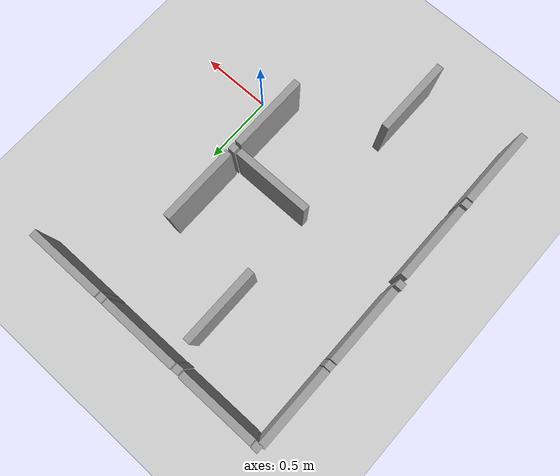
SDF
<sdf version="1.6">
 <world name="default">
  <model name="ground_plane">
   <static>1</static>
   <link name="link">
    <collision name="collision">
     <geometry><plane><normal>0 0 1</normal><size>100 100</size></plane></geometry>
     <surface>
      <contact><collide_bitmask>65535</collide_bitmask></contact>
      <friction><ode><mu>100</mu><mu2>50</mu2></ode></friction>
     </surface>
    </collision>
    <visual name="visual">
     <cast_shadows>0</cast_shadows>
     <geometry><plane><normal>0 0 1</normal><size>100 100</size></plane></geometry>
     <material>
      <script><uri>file://media/materials/scripts/gazebo.material</uri><name>Gazebo/Grey</name></script>
     </material>
    </visual>
   </link>
  </model>
  <model name="white_maze">
   <link name="link_0_clone_1_clone_2">
    <inertial>
     <mass>1</mass>
     <inertia>
      <ixx>0.166667</ixx>
      <ixy>0</ixy>
      <ixz>0</ixz>
      <iyy>0.166667</iyy>
      <iyz>0</iyz>
      <izz>0.166667</izz>
     </inertia>
    </inertial>
    <pose>-0.019419 1.51088 0 0 -0 0</pose>
    <visual name="visual">
     <geometry><box><size>0.55 0.05 0.4</size></box></geometry>
     <material>
      <lighting>1</lighting>
      <script><uri>file://media/materials/scripts/gazebo.material</uri><name>Gazebo/Grey</name></script>
      <shader type="vertex"><normal_map>__default__</normal_map></shader>
      <ambient>1 1 1 1</ambient>
      <diffuse>0.7 0.7 0.7 1</diffuse>
      <specular>0.01 0.01 0.01 1</specular>
      <emissive>0 0 0 1</emissive>
     </material>
    </visual>
    <collision name="collision">
     <geometry><box><size>0.55 0.05 0.4</size></box></geometry>
     <surface>
      <friction>
       <ode><mu>1</mu><mu2>1</mu2><fdir1>0 0 0</fdir1><slip1>0</slip1><slip2>0</slip2></ode>
       <torsional>
        <coefficient>1</coefficient>
        <patch_radius>0</patch_radius>
        <surface_radius>0</surface_radius>
        <use_patch_radius>1</use_patch_radius>
        <ode><slip>0</slip></ode>
       </torsional>
      </friction>
      <bounce><restitution_coefficient>0</restitution_coefficient><threshold>1e+06</threshold></bounce>
      <contact>
       <collide_without_contact>0</collide_without_contact>
       <collide_without_contact_bitmask>1</collide_without_contact_bitmask>
       <collide_bitmask>1</collide_bitmask>
       <ode>
        <soft_cfm>0</soft_cfm>
        <soft_erp>0.2</soft_erp>
        <kp>1e+13</kp>
        <kd>1</kd>
        <max_vel>0.01</max_vel>
        <min_depth>0</min_depth>
       </ode>
       <bullet>
        <split_impulse>1</split_impulse>
        <split_impulse_penetration_threshold>-0.01</split_impulse_penetration_threshold>
        <soft_cfm>0</soft_cfm>
        <soft_erp>0.2</soft_erp>
        <kp>1e+13</kp>
        <kd>1</kd>
       </bullet>
      </contact>
     </surface>
    </collision>
   </link>
   <link name="link_0_clone_1_clone_3">
    <inertial>
     <mass>1</mass>
     <inertia>
      <ixx>0.166667</ixx>
      <ixy>0</ixy>
      <ixz>0</ixz>
      <iyy>0.166667</iyy>
      <iyz>0</iyz>
      <izz>0.166667</izz>
     </inertia>
    </inertial>
    <pose>-0.630178 1.51122 0 0 -0 0</pose>
    <visual name="visual">
     <geometry><box><size>0.55 0.05 0.4</size></box></geometry>
     <material>
      <lighting>1</lighting>
      <script><uri>file://media/materials/scripts/gazebo.material</uri><name>Gazebo/Grey</name></script>
      <shader type="vertex"><normal_map>__default__</normal_map></shader>
      <ambient>1 1 1 1</ambient>
      <diffuse>0.7 0.7 0.7 1</diffuse>
      <specular>0.01 0.01 0.01 1</specular>
      <emissive>0 0 0 1</emissive>
     </material>
    </visual>
    <collision name="collision">
     <geometry><box><size>0.55 0.05 0.4</size></box></geometry>
     <surface>
      <friction>
       <ode><mu>1</mu><mu2>1</mu2><fdir1>0 0 0</fdir1><slip1>0</slip1><slip2>0</slip2></ode>
       <torsional>
        <coefficient>1</coefficient>
        <patch_radius>0</patch_radius>
        <surface_radius>0</surface_radius>
        <use_patch_radius>1</use_patch_radius>
        <ode><slip>0</slip></ode>
       </torsional>
      </friction>
      <bounce><restitution_coefficient>0</restitution_coefficient><threshold>1e+06</threshold></bounce>
      <contact>
       <collide_without_contact>0</collide_without_contact>
       <collide_without_contact_bitmask>1</collide_without_contact_bitmask>
       <collide_bitmask>1</collide_bitmask>
       <ode>
        <soft_cfm>0</soft_cfm>
        <soft_erp>0.2</soft_erp>
        <kp>1e+13</kp>
        <kd>1</kd>
        <max_vel>0.01</max_vel>
        <min_depth>0</min_depth>
       </ode>
       <bullet>
        <split_impulse>1</split_impulse>
        <split_impulse_penetration_threshold>-0.01</split_impulse_penetration_threshold>
        <soft_cfm>0</soft_cfm>
        <soft_erp>0.2</soft_erp>
        <kp>1e+13</kp>
        <kd>1</kd>
       </bullet>
      </contact>
     </surface>
    </collision>
   </link>
   <link name="link_0_clone_1_clone_4">
    <inertial>
     <mass>1</mass>
     <inertia>
      <ixx>0.166667</ixx>
      <ixy>0</ixy>
      <ixz>0</ixz>
      <iyy>0.166667</iyy>
      <iyz>0</iyz>
      <izz>0.166667</izz>
     </inertia>
    </inertial>
    <pose>-1.24431 1.51418 0 0 -0 0</pose>
    <visual name="visual">
     <geometry><box><size>0.55 0.05 0.4</size></box></geometry>
     <material>
      <lighting>1</lighting>
      <script><uri>file://media/materials/scripts/gazebo.material</uri><name>Gazebo/Grey</name></script>
      <shader type="vertex"><normal_map>__default__</normal_map></shader>
      <ambient>1 1 1 1</ambient>
      <diffuse>0.7 0.7 0.7 1</diffuse>
      <specular>0.01 0.01 0.01 1</specular>
      <emissive>0 0 0 1</emissive>
     </material>
    </visual>
    <collision name="collision">
     <geometry><box><size>0.55 0.05 0.4</size></box></geometry>
     <surface>
      <friction>
       <ode><mu>1</mu><mu2>1</mu2><fdir1>0 0 0</fdir1><slip1>0</slip1><slip2>0</slip2></ode>
       <torsional>
        <coefficient>1</coefficient>
        <patch_radius>0</patch_radius>
        <surface_radius>0</surface_radius>
        <use_patch_radius>1</use_patch_radius>
        <ode><slip>0</slip></ode>
       </torsional>
      </friction>
      <bounce><restitution_coefficient>0</restitution_coefficient><threshold>1e+06</threshold></bounce>
      <contact>
       <collide_without_contact>0</collide_without_contact>
       <collide_without_contact_bitmask>1</collide_without_contact_bitmask>
       <collide_bitmask>1</collide_bitmask>
       <ode>
        <soft_cfm>0</soft_cfm>
        <soft_erp>0.2</soft_erp>
        <kp>1e+13</kp>
        <kd>1</kd>
        <max_vel>0.01</max_vel>
        <min_depth>0</min_depth>
       </ode>
       <bullet>
        <split_impulse>1</split_impulse>
        <split_impulse_penetration_threshold>-0.01</split_impulse_penetration_threshold>
        <soft_cfm>0</soft_cfm>
        <soft_erp>0.2</soft_erp>
        <kp>1e+13</kp>
        <kd>1</kd>
       </bullet>
      </contact>
     </surface>
    </collision>
   </link>
   <link name="link_0_clone_1_clone_clone_1_clone_0">
    <inertial>
     <mass>1</mass>
     <inertia>
      <ixx>0.166667</ixx>
      <ixy>0</ixy>
      <ixz>0</ixz>
      <iyy>0.166667</iyy>
      <iyz>0</iyz>
      <izz>0.166667</izz>
     </inertia>
    </inertial>
    <pose>-1.55915 -0.649577 0 0 0 -1.57264</pose>
    <visual name="visual">
     <geometry><box><size>0.55 0.05 0.4</size></box></geometry>
     <material>
      <lighting>1</lighting>
      <script><uri>file://media/materials/scripts/gazebo.material</uri><name>Gazebo/Grey</name></script>
      <shader type="vertex"><normal_map>__default__</normal_map></shader>
      <ambient>1 1 1 1</ambient>
      <diffuse>0.7 0.7 0.7 1</diffuse>
      <specular>0.01 0.01 0.01 1</specular>
      <emissive>0 0 0 1</emissive>
     </material>
    </visual>
    <collision name="collision">
     <geometry><box><size>0.55 0.05 0.4</size></box></geometry>
     <surface>
      <friction>
       <ode><mu>1</mu><mu2>1</mu2><fdir1>0 0 0</fdir1><slip1>0</slip1><slip2>0</slip2></ode>
       <torsional>
        <coefficient>1</coefficient>
        <patch_radius>0</patch_radius>
        <surface_radius>0</surface_radius>
        <use_patch_radius>1</use_patch_radius>
        <ode><slip>0</slip></ode>
       </torsional>
      </friction>
      <bounce><restitution_coefficient>0</restitution_coefficient><threshold>1e+06</threshold></bounce>
      <contact>
       <collide_without_contact>0</collide_without_contact>
       <collide_without_contact_bitmask>1</collide_without_contact_bitmask>
       <collide_bitmask>1</collide_bitmask>
       <ode>
        <soft_cfm>0</soft_cfm>
        <soft_erp>0.2</soft_erp>
        <kp>1e+13</kp>
        <kd>1</kd>
        <max_vel>0.01</max_vel>
        <min_depth>0</min_depth>
       </ode>
       <bullet>
        <split_impulse>1</split_impulse>
        <split_impulse_penetration_threshold>-0.01</split_impulse_penetration_threshold>
        <soft_cfm>0</soft_cfm>
        <soft_erp>0.2</soft_erp>
        <kp>1e+13</kp>
        <kd>1</kd>
       </bullet>
      </contact>
     </surface>
    </collision>
   </link>
   <link name="link_0_clone_1_clone_clone_1_clone_0_clone">
    <inertial>
     <mass>1</mass>
     <inertia>
      <ixx>0.166667</ixx>
      <ixy>0</ixy>
      <ixz>0</ixz>
      <iyy>0.166667</iyy>
      <iyz>0</iyz>
      <izz>0.166667</izz>
     </inertia>
    </inertial>
    <pose>-0.883039 -0.671172 0 0 0 -1.57264</pose>
    <visual name="visual">
     <geometry><box><size>0.55 0.05 0.4</size></box></geometry>
     <material>
      <lighting>1</lighting>
      <script><uri>file://media/materials/scripts/gazebo.material</uri><name>Gazebo/Grey</name></script>
      <shader type="vertex"><normal_map>__default__</normal_map></shader>
      <ambient>1 1 1 1</ambient>
      <diffuse>0.7 0.7 0.7 1</diffuse>
      <specular>0.01 0.01 0.01 1</specular>
      <emissive>0 0 0 1</emissive>
     </material>
    </visual>
    <collision name="collision">
     <geometry><box><size>0.55 0.05 0.4</size></box></geometry>
     <surface>
      <friction>
       <ode><mu>1</mu><mu2>1</mu2><fdir1>0 0 0</fdir1><slip1>0</slip1><slip2>0</slip2></ode>
       <torsional>
        <coefficient>1</coefficient>
        <patch_radius>0</patch_radius>
        <surface_radius>0</surface_radius>
        <use_patch_radius>1</use_patch_radius>
        <ode><slip>0</slip></ode>
       </torsional>
      </friction>
      <bounce><restitution_coefficient>0</restitution_coefficient><threshold>1e+06</threshold></bounce>
      <contact>
       <collide_without_contact>0</collide_without_contact>
       <collide_without_contact_bitmask>1</collide_without_contact_bitmask>
       <collide_bitmask>1</collide_bitmask>
       <ode>
        <soft_cfm>0</soft_cfm>
        <soft_erp>0.2</soft_erp>
        <kp>1e+13</kp>
        <kd>1</kd>
        <max_vel>0.01</max_vel>
        <min_depth>0</min_depth>
       </ode>
       <bullet>
        <split_impulse>1</split_impulse>
        <split_impulse_penetration_threshold>-0.01</split_impulse_penetration_threshold>
        <soft_cfm>0</soft_cfm>
        <soft_erp>0.2</soft_erp>
        <kp>1e+13</kp>
        <kd>1</kd>
       </bullet>
      </contact>
     </surface>
    </collision>
   </link>
   <link name="link_0_clone_1_clone_clone_1_clone_0_clone_clone">
    <inertial>
     <mass>1</mass>
     <inertia>
      <ixx>0.166667</ixx>
      <ixy>0</ixy>
      <ixz>0</ixz>
      <iyy>0.166667</iyy>
      <iyz>0</iyz>
      <izz>0.166667</izz>
     </inertia>
    </inertial>
    <pose>-0.276196 0.011056 0 0 0 -1.57264</pose>
    <visual name="visual">
     <geometry><box><size>0.55 0.05 0.4</size></box></geometry>
     <material>
      <lighting>1</lighting>
      <script><uri>file://media/materials/scripts/gazebo.material</uri><name>Gazebo/Grey</name></script>
      <shader type="vertex"><normal_map>__default__</normal_map></shader>
      <ambient>1 1 1 1</ambient>
      <diffuse>0.7 0.7 0.7 1</diffuse>
      <specular>0.01 0.01 0.01 1</specular>
      <emissive>0 0 0 1</emissive>
     </material>
    </visual>
    <collision name="collision">
     <geometry><box><size>0.55 0.05 0.4</size></box></geometry>
     <surface>
      <friction>
       <ode><mu>1</mu><mu2>1</mu2><fdir1>0 0 0</fdir1><slip1>0</slip1><slip2>0</slip2></ode>
       <torsional>
        <coefficient>1</coefficient>
        <patch_radius>0</patch_radius>
        <surface_radius>0</surface_radius>
        <use_patch_radius>1</use_patch_radius>
        <ode><slip>0</slip></ode>
       </torsional>
      </friction>
      <bounce><restitution_coefficient>0</restitution_coefficient><threshold>1e+06</threshold></bounce>
      <contact>
       <collide_without_contact>0</collide_without_contact>
       <collide_without_contact_bitmask>1</collide_without_contact_bitmask>
       <collide_bitmask>1</collide_bitmask>
       <ode>
        <soft_cfm>0</soft_cfm>
        <soft_erp>0.2</soft_erp>
        <kp>1e+13</kp>
        <kd>1</kd>
        <max_vel>0.01</max_vel>
        <min_depth>0</min_depth>
       </ode>
       <bullet>
        <split_impulse>1</split_impulse>
        <split_impulse_penetration_threshold>-0.01</split_impulse_penetration_threshold>
        <soft_cfm>0</soft_cfm>
        <soft_erp>0.2</soft_erp>
        <kp>1e+13</kp>
        <kd>1</kd>
       </bullet>
      </contact>
     </surface>
    </collision>
   </link>
   <link name="link_0_clone_1_clone_clone_1_clone_0_clone_clone_0">
    <inertial>
     <mass>1</mass>
     <inertia>
      <ixx>0.166667</ixx>
      <ixy>0</ixy>
      <ixz>0</ixz>
      <iyy>0.166667</iyy>
      <iyz>0</iyz>
      <izz>0.166667</izz>
     </inertia>
    </inertial>
    <pose>-0.271946 0.640841 0 0 0 -1.57264</pose>
    <visual name="visual">
     <geometry><box><size>0.55 0.05 0.4</size></box></geometry>
     <material>
      <lighting>1</lighting>
      <script><uri>file://media/materials/scripts/gazebo.material</uri><name>Gazebo/Grey</name></script>
      <shader type="vertex"><normal_map>__default__</normal_map></shader>
      <ambient>1 1 1 1</ambient>
      <diffuse>0.7 0.7 0.7 1</diffuse>
      <specular>0.01 0.01 0.01 1</specular>
      <emissive>0 0 0 1</emissive>
     </material>
    </visual>
    <collision name="collision">
     <geometry><box><size>0.55 0.05 0.4</size></box></geometry>
     <surface>
      <friction>
       <ode><mu>1</mu><mu2>1</mu2><fdir1>0 0 0</fdir1><slip1>0</slip1><slip2>0</slip2></ode>
       <torsional>
        <coefficient>1</coefficient>
        <patch_radius>0</patch_radius>
        <surface_radius>0</surface_radius>
        <use_patch_radius>1</use_patch_radius>
        <ode><slip>0</slip></ode>
       </torsional>
      </friction>
      <bounce><restitution_coefficient>0</restitution_coefficient><threshold>1e+06</threshold></bounce>
      <contact>
       <collide_without_contact>0</collide_without_contact>
       <collide_without_contact_bitmask>1</collide_without_contact_bitmask>
       <collide_bitmask>1</collide_bitmask>
       <ode>
        <soft_cfm>0</soft_cfm>
        <soft_erp>0.2</soft_erp>
        <kp>1e+13</kp>
        <kd>1</kd>
        <max_vel>0.01</max_vel>
        <min_depth>0</min_depth>
       </ode>
       <bullet>
        <split_impulse>1</split_impulse>
        <split_impulse_penetration_threshold>-0.01</split_impulse_penetration_threshold>
        <soft_cfm>0</soft_cfm>
        <soft_erp>0.2</soft_erp>
        <kp>1e+13</kp>
        <kd>1</kd>
       </bullet>
      </contact>
     </surface>
    </collision>
   </link>
   <link name="link_0_clone_1_clone_clone_1_clone_0_clone_clone_3">
    <inertial>
     <mass>1</mass>
     <inertia>
      <ixx>0.166667</ixx>
      <ixy>0</ixy>
      <ixz>0</ixz>
      <iyy>0.166667</iyy>
      <iyz>0</iyz>
      <izz>0.166667</izz>
     </inertia>
    </inertial>
    <pose>-0.86681 1.09005 0 0 0 -1.57264</pose>
    <visual name="visual">
     <geometry><box><size>0.55 0.05 0.4</size></box></geometry>
     <material>
      <lighting>1</lighting>
      <script><uri>file://media/materials/scripts/gazebo.material</uri><name>Gazebo/Grey</name></script>
      <shader type="vertex"><normal_map>__default__</normal_map></shader>
      <ambient>1 1 1 1</ambient>
      <diffuse>0.7 0.7 0.7 1</diffuse>
      <specular>0.01 0.01 0.01 1</specular>
      <emissive>0 0 0 1</emissive>
     </material>
    </visual>
    <collision name="collision">
     <geometry><box><size>0.55 0.05 0.4</size></box></geometry>
     <surface>
      <friction>
       <ode><mu>1</mu><mu2>1</mu2><fdir1>0 0 0</fdir1><slip1>0</slip1><slip2>0</slip2></ode>
       <torsional>
        <coefficient>1</coefficient>
        <patch_radius>0</patch_radius>
        <surface_radius>0</surface_radius>
        <use_patch_radius>1</use_patch_radius>
        <ode><slip>0</slip></ode>
       </torsional>
      </friction>
      <bounce><restitution_coefficient>0</restitution_coefficient><threshold>1e+06</threshold></bounce>
      <contact>
       <collide_without_contact>0</collide_without_contact>
       <collide_without_contact_bitmask>1</collide_without_contact_bitmask>
       <collide_bitmask>1</collide_bitmask>
       <ode>
        <soft_cfm>0</soft_cfm>
        <soft_erp>0.2</soft_erp>
        <kp>1e+13</kp>
        <kd>1</kd>
        <max_vel>0.01</max_vel>
        <min_depth>0</min_depth>
       </ode>
       <bullet>
        <split_impulse>1</split_impulse>
        <split_impulse_penetration_threshold>-0.01</split_impulse_penetration_threshold>
        <soft_cfm>0</soft_cfm>
        <soft_erp>0.2</soft_erp>
        <kp>1e+13</kp>
        <kd>1</kd>
       </bullet>
      </contact>
     </surface>
    </collision>
   </link>
   <link name="link_0_clone_1_clone_clone_1_clone_1">
    <inertial>
     <mass>1</mass>
     <inertia>
      <ixx>0.166667</ixx>
      <ixy>0</ixy>
      <ixz>0</ixz>
      <iyy>0.166667</iyy>
      <iyz>0</iyz>
      <izz>0.166667</izz>
     </inertia>
    </inertial>
    <pose>-1.55831 -0.025932 0 0 0 -1.57264</pose>
    <visual name="visual">
     <geometry><box><size>0.55 0.05 0.4</size></box></geometry>
     <material>
      <lighting>1</lighting>
      <script><uri>file://media/materials/scripts/gazebo.material</uri><name>Gazebo/Grey</name></script>
      <shader type="vertex"><normal_map>__default__</normal_map></shader>
      <ambient>1 1 1 1</ambient>
      <diffuse>0.7 0.7 0.7 1</diffuse>
      <specular>0.01 0.01 0.01 1</specular>
      <emissive>0 0 0 1</emissive>
     </material>
    </visual>
    <collision name="collision">
     <geometry><box><size>0.55 0.05 0.4</size></box></geometry>
     <surface>
      <friction>
       <ode><mu>1</mu><mu2>1</mu2><fdir1>0 0 0</fdir1><slip1>0</slip1><slip2>0</slip2></ode>
       <torsional>
        <coefficient>1</coefficient>
        <patch_radius>0</patch_radius>
        <surface_radius>0</surface_radius>
        <use_patch_radius>1</use_patch_radius>
        <ode><slip>0</slip></ode>
       </torsional>
      </friction>
      <bounce><restitution_coefficient>0</restitution_coefficient><threshold>1e+06</threshold></bounce>
      <contact>
       <collide_without_contact>0</collide_without_contact>
       <collide_without_contact_bitmask>1</collide_without_contact_bitmask>
       <collide_bitmask>1</collide_bitmask>
       <ode>
        <soft_cfm>0</soft_cfm>
        <soft_erp>0.2</soft_erp>
        <kp>1e+13</kp>
        <kd>1</kd>
        <max_vel>0.01</max_vel>
        <min_depth>0</min_depth>
       </ode>
       <bullet>
        <split_impulse>1</split_impulse>
        <split_impulse_penetration_threshold>-0.01</split_impulse_penetration_threshold>
        <soft_cfm>0</soft_cfm>
        <soft_erp>0.2</soft_erp>
        <kp>1e+13</kp>
        <kd>1</kd>
       </bullet>
      </contact>
     </surface>
    </collision>
   </link>
   <link name="link_0_clone_1_clone_clone_1_clone_2">
    <inertial>
     <mass>1</mass>
     <inertia>
      <ixx>0.166667</ixx>
      <ixy>0</ixy>
      <ixz>0</ixz>
      <iyy>0.166667</iyy>
      <iyz>0</iyz>
      <izz>0.166667</izz>
     </inertia>
    </inertial>
    <pose>-1.56812 0.616068 0 0 0 -1.57264</pose>
    <visual name="visual">
     <geometry><box><size>0.55 0.05 0.4</size></box></geometry>
     <material>
      <lighting>1</lighting>
      <script><uri>file://media/materials/scripts/gazebo.material</uri><name>Gazebo/Grey</name></script>
      <shader type="vertex"><normal_map>__default__</normal_map></shader>
      <ambient>1 1 1 1</ambient>
      <diffuse>0.7 0.7 0.7 1</diffuse>
      <specular>0.01 0.01 0.01 1</specular>
      <emissive>0 0 0 1</emissive>
     </material>
    </visual>
    <collision name="collision">
     <geometry><box><size>0.55 0.05 0.4</size></box></geometry>
     <surface>
      <friction>
       <ode><mu>1</mu><mu2>1</mu2><fdir1>0 0 0</fdir1><slip1>0</slip1><slip2>0</slip2></ode>
       <torsional>
        <coefficient>1</coefficient>
        <patch_radius>0</patch_radius>
        <surface_radius>0</surface_radius>
        <use_patch_radius>1</use_patch_radius>
        <ode><slip>0</slip></ode>
       </torsional>
      </friction>
      <bounce><restitution_coefficient>0</restitution_coefficient><threshold>1e+06</threshold></bounce>
      <contact>
       <collide_without_contact>0</collide_without_contact>
       <collide_without_contact_bitmask>1</collide_without_contact_bitmask>
       <collide_bitmask>1</collide_bitmask>
       <ode>
        <soft_cfm>0</soft_cfm>
        <soft_erp>0.2</soft_erp>
        <kp>1e+13</kp>
        <kd>1</kd>
        <max_vel>0.01</max_vel>
        <min_depth>0</min_depth>
       </ode>
       <bullet>
        <split_impulse>1</split_impulse>
        <split_impulse_penetration_threshold>-0.01</split_impulse_penetration_threshold>
        <soft_cfm>0</soft_cfm>
        <soft_erp>0.2</soft_erp>
        <kp>1e+13</kp>
        <kd>1</kd>
       </bullet>
      </contact>
     </surface>
    </collision>
   </link>
   <link name="link_0_clone_1_clone_clone_1_clone_3">
    <inertial>
     <mass>1</mass>
     <inertia>
      <ixx>0.166667</ixx>
      <ixy>0</ixy>
      <ixz>0</ixz>
      <iyy>0.166667</iyy>
      <iyz>0</iyz>
      <izz>0.166667</izz>
     </inertia>
    </inertial>
    <pose>-1.56658 1.22457 0 0 0 -1.57264</pose>
    <visual name="visual">
     <geometry><box><size>0.55 0.05 0.4</size></box></geometry>
     <material>
      <lighting>1</lighting>
      <script><uri>file://media/materials/scripts/gazebo.material</uri><name>Gazebo/Grey</name></script>
      <shader type="vertex"><normal_map>__default__</normal_map></shader>
      <ambient>1 1 1 1</ambient>
      <diffuse>0.7 0.7 0.7 1</diffuse>
      <specular>0.01 0.01 0.01 1</specular>
      <emissive>0 0 0 1</emissive>
     </material>
    </visual>
    <collision name="collision">
     <geometry><box><size>0.55 0.05 0.4</size></box></geometry>
     <surface>
      <friction>
       <ode><mu>1</mu><mu2>1</mu2><fdir1>0 0 0</fdir1><slip1>0</slip1><slip2>0</slip2></ode>
       <torsional>
        <coefficient>1</coefficient>
        <patch_radius>0</patch_radius>
        <surface_radius>0</surface_radius>
        <use_patch_radius>1</use_patch_radius>
        <ode><slip>0</slip></ode>
       </torsional>
      </friction>
      <bounce><restitution_coefficient>0</restitution_coefficient><threshold>1e+06</threshold></bounce>
      <contact>
       <collide_without_contact>0</collide_without_contact>
       <collide_without_contact_bitmask>1</collide_without_contact_bitmask>
       <collide_bitmask>1</collide_bitmask>
       <ode>
        <soft_cfm>0</soft_cfm>
        <soft_erp>0.2</soft_erp>
        <kp>1e+13</kp>
        <kd>1</kd>
        <max_vel>0.01</max_vel>
        <min_depth>0</min_depth>
       </ode>
       <bullet>
        <split_impulse>1</split_impulse>
        <split_impulse_penetration_threshold>-0.01</split_impulse_penetration_threshold>
        <soft_cfm>0</soft_cfm>
        <soft_erp>0.2</soft_erp>
        <kp>1e+13</kp>
        <kd>1</kd>
       </bullet>
      </contact>
     </surface>
    </collision>
   </link>
   <link name="link_0_clone_3_clone">
    <inertial>
     <mass>1</mass>
     <inertia>
      <ixx>0.166667</ixx>
      <ixy>0</ixy>
      <ixz>0</ixz>
      <iyy>0.166667</iyy>
      <iyz>0</iyz>
      <izz>0.166667</izz>
     </inertia>
    </inertial>
    <pose>-0.59031 0.320537 0 0 -0 0</pose>
    <visual name="visual">
     <geometry><box><size>0.55 0.05 0.4</size></box></geometry>
     <material>
      <lighting>1</lighting>
      <script><uri>file://media/materials/scripts/gazebo.material</uri><name>Gazebo/Grey</name></script>
      <shader type="vertex"><normal_map>__default__</normal_map></shader>
      <ambient>1 1 1 1</ambient>
      <diffuse>0.7 0.7 0.7 1</diffuse>
      <specular>0.01 0.01 0.01 1</specular>
      <emissive>0 0 0 1</emissive>
     </material>
    </visual>
    <collision name="collision">
     <geometry><box><size>0.55 0.05 0.4</size></box></geometry>
     <surface>
      <friction>
       <ode><mu>1</mu><mu2>1</mu2><fdir1>0 0 0</fdir1><slip1>0</slip1><slip2>0</slip2></ode>
       <torsional>
        <coefficient>1</coefficient>
        <patch_radius>0</patch_radius>
        <surface_radius>0</surface_radius>
        <use_patch_radius>1</use_patch_radius>
        <ode><slip>0</slip></ode>
       </torsional>
      </friction>
      <bounce><restitution_coefficient>0</restitution_coefficient><threshold>1e+06</threshold></bounce>
      <contact>
       <collide_without_contact>0</collide_without_contact>
       <collide_without_contact_bitmask>1</collide_without_contact_bitmask>
       <collide_bitmask>1</collide_bitmask>
       <ode>
        <soft_cfm>0</soft_cfm>
        <soft_erp>0.2</soft_erp>
        <kp>1e+13</kp>
        <kd>1</kd>
        <max_vel>0.01</max_vel>
        <min_depth>0</min_depth>
       </ode>
       <bullet>
        <split_impulse>1</split_impulse>
        <split_impulse_penetration_threshold>-0.01</split_impulse_penetration_threshold>
        <soft_cfm>0</soft_cfm>
        <soft_erp>0.2</soft_erp>
        <kp>1e+13</kp>
        <kd>1</kd>
       </bullet>
      </contact>
     </surface>
    </collision>
   </link>
   <link name="link_1_clone_3_clone_2_clone_1">
    <inertial>
     <mass>1</mass>
     <inertia>
      <ixx>0.166667</ixx>
      <ixy>0</ixy>
      <ixz>0</ixz>
      <iyy>0.166667</iyy>
      <iyz>0</iyz>
      <izz>0.166667</izz>
     </inertia>
    </inertial>
    <pose>-0.325591 1.50996 0 0 -0 0</pose>
    <visual name="visual">
     <geometry><box><size>0.05 0.05 0.4</size></box></geometry>
     <material>
      <lighting>1</lighting>
      <script><uri>file://media/materials/scripts/gazebo.material</uri><name>Gazebo/Grey</name></script>
      <shader type="vertex"><normal_map>__default__</normal_map></shader>
      <ambient>0.3 0.3 0.3 1</ambient>
      <diffuse>0.7 0.7 0.7 1</diffuse>
      <specular>0.01 0.01 0.01 1</specular>
      <emissive>0 0 0 1</emissive>
     </material>
    </visual>
    <collision name="collision">
     <geometry><box><size>0.05 0.05 0.4</size></box></geometry>
     <surface>
      <friction>
       <ode><mu>1</mu><mu2>1</mu2><fdir1>0 0 0</fdir1><slip1>0</slip1><slip2>0</slip2></ode>
       <torsional>
        <coefficient>1</coefficient>
        <patch_radius>0</patch_radius>
        <surface_radius>0</surface_radius>
        <use_patch_radius>1</use_patch_radius>
        <ode><slip>0</slip></ode>
       </torsional>
      </friction>
      <bounce><restitution_coefficient>0</restitution_coefficient><threshold>1e+06</threshold></bounce>
      <contact>
       <collide_without_contact>0</collide_without_contact>
       <collide_without_contact_bitmask>1</collide_without_contact_bitmask>
       <collide_bitmask>1</collide_bitmask>
       <ode>
        <soft_cfm>0</soft_cfm>
        <soft_erp>0.2</soft_erp>
        <kp>1e+13</kp>
        <kd>1</kd>
        <max_vel>0.01</max_vel>
        <min_depth>0</min_depth>
       </ode>
       <bullet>
        <split_impulse>1</split_impulse>
        <split_impulse_penetration_threshold>-0.01</split_impulse_penetration_threshold>
        <soft_cfm>0</soft_cfm>
        <soft_erp>0.2</soft_erp>
        <kp>1e+13</kp>
        <kd>1</kd>
       </bullet>
      </contact>
     </surface>
    </collision>
   </link>
   <link name="link_1_clone_3_clone_2_clone_2">
    <inertial>
     <mass>1</mass>
     <inertia>
      <ixx>0.166667</ixx>
      <ixy>0</ixy>
      <ixz>0</ixz>
      <iyy>0.166667</iyy>
      <iyz>0</iyz>
      <izz>0.166667</izz>
     </inertia>
    </inertial>
    <pose>-0.936873 1.50774 0 0 -0 0</pose>
    <visual name="visual">
     <geometry><box><size>0.05 0.05 0.4</size></box></geometry>
     <material>
      <lighting>1</lighting>
      <script><uri>file://media/materials/scripts/gazebo.material</uri><name>Gazebo/Grey</name></script>
      <shader type="vertex"><normal_map>__default__</normal_map></shader>
      <ambient>0.3 0.3 0.3 1</ambient>
      <diffuse>0.7 0.7 0.7 1</diffuse>
      <specular>0.01 0.01 0.01 1</specular>
      <emissive>0 0 0 1</emissive>
     </material>
    </visual>
    <collision name="collision">
     <geometry><box><size>0.05 0.05 0.4</size></box></geometry>
     <surface>
      <friction>
       <ode><mu>1</mu><mu2>1</mu2><fdir1>0 0 0</fdir1><slip1>0</slip1><slip2>0</slip2></ode>
       <torsional>
        <coefficient>1</coefficient>
        <patch_radius>0</patch_radius>
        <surface_radius>0</surface_radius>
        <use_patch_radius>1</use_patch_radius>
        <ode><slip>0</slip></ode>
       </torsional>
      </friction>
      <bounce><restitution_coefficient>0</restitution_coefficient><threshold>1e+06</threshold></bounce>
      <contact>
       <collide_without_contact>0</collide_without_contact>
       <collide_without_contact_bitmask>1</collide_without_contact_bitmask>
       <collide_bitmask>1</collide_bitmask>
       <ode>
        <soft_cfm>0</soft_cfm>
        <soft_erp>0.2</soft_erp>
        <kp>1e+13</kp>
        <kd>1</kd>
        <max_vel>0.01</max_vel>
        <min_depth>0</min_depth>
       </ode>
       <bullet>
        <split_impulse>1</split_impulse>
        <split_impulse_penetration_threshold>-0.01</split_impulse_penetration_threshold>
        <soft_cfm>0</soft_cfm>
        <soft_erp>0.2</soft_erp>
        <kp>1e+13</kp>
        <kd>1</kd>
       </bullet>
      </contact>
     </surface>
    </collision>
   </link>
   <link name="link_1_clone_3_clone_2_clone_3">
    <inertial>
     <mass>1</mass>
     <inertia>
      <ixx>0.166667</ixx>
      <ixy>0</ixy>
      <ixz>0</ixz>
      <iyy>0.166667</iyy>
      <iyz>0</iyz>
      <izz>0.166667</izz>
     </inertia>
    </inertial>
    <pose>-1.54967 1.51744 0 0 -0 0</pose>
    <visual name="visual">
     <geometry><box><size>0.05 0.05 0.4</size></box></geometry>
     <material>
      <lighting>1</lighting>
      <script><uri>file://media/materials/scripts/gazebo.material</uri><name>Gazebo/Grey</name></script>
      <shader type="vertex"><normal_map>__default__</normal_map></shader>
      <ambient>0.3 0.3 0.3 1</ambient>
      <diffuse>0.7 0.7 0.7 1</diffuse>
      <specular>0.01 0.01 0.01 1</specular>
      <emissive>0 0 0 1</emissive>
     </material>
    </visual>
    <collision name="collision">
     <geometry><box><size>0.05 0.05 0.4</size></box></geometry>
     <surface>
      <friction>
       <ode><mu>1</mu><mu2>1</mu2><fdir1>0 0 0</fdir1><slip1>0</slip1><slip2>0</slip2></ode>
       <torsional>
        <coefficient>1</coefficient>
        <patch_radius>0</patch_radius>
        <surface_radius>0</surface_radius>
        <use_patch_radius>1</use_patch_radius>
        <ode><slip>0</slip></ode>
       </torsional>
      </friction>
      <bounce><restitution_coefficient>0</restitution_coefficient><threshold>1e+06</threshold></bounce>
      <contact>
       <collide_without_contact>0</collide_without_contact>
       <collide_without_contact_bitmask>1</collide_without_contact_bitmask>
       <collide_bitmask>1</collide_bitmask>
       <ode>
        <soft_cfm>0</soft_cfm>
        <soft_erp>0.2</soft_erp>
        <kp>1e+13</kp>
        <kd>1</kd>
        <max_vel>0.01</max_vel>
        <min_depth>0</min_depth>
       </ode>
       <bullet>
        <split_impulse>1</split_impulse>
        <split_impulse_penetration_threshold>-0.01</split_impulse_penetration_threshold>
        <soft_cfm>0</soft_cfm>
        <soft_erp>0.2</soft_erp>
        <kp>1e+13</kp>
        <kd>1</kd>
       </bullet>
      </contact>
     </surface>
    </collision>
   </link>
   <link name="link_1_clone_3_clone_2_clone_4">
    <inertial>
     <mass>1</mass>
     <inertia>
      <ixx>0.166667</ixx>
      <ixy>0</ixy>
      <ixz>0</ixz>
      <iyy>0.166667</iyy>
      <iyz>0</iyz>
      <izz>0.166667</izz>
     </inertia>
    </inertial>
    <pose>-1.56617 0.920959 0 0 -0 0</pose>
    <visual name="visual">
     <geometry><box><size>0.05 0.05 0.4</size></box></geometry>
     <material>
      <lighting>1</lighting>
      <script><uri>file://media/materials/scripts/gazebo.material</uri><name>Gazebo/Grey</name></script>
      <shader type="vertex"><normal_map>__default__</normal_map></shader>
      <ambient>0.3 0.3 0.3 1</ambient>
      <diffuse>0.7 0.7 0.7 1</diffuse>
      <specular>0.01 0.01 0.01 1</specular>
      <emissive>0 0 0 1</emissive>
     </material>
    </visual>
    <collision name="collision">
     <geometry><box><size>0.05 0.05 0.4</size></box></geometry>
     <surface>
      <friction>
       <ode><mu>1</mu><mu2>1</mu2><fdir1>0 0 0</fdir1><slip1>0</slip1><slip2>0</slip2></ode>
       <torsional>
        <coefficient>1</coefficient>
        <patch_radius>0</patch_radius>
        <surface_radius>0</surface_radius>
        <use_patch_radius>1</use_patch_radius>
        <ode><slip>0</slip></ode>
       </torsional>
      </friction>
      <bounce><restitution_coefficient>0</restitution_coefficient><threshold>1e+06</threshold></bounce>
      <contact>
       <collide_without_contact>0</collide_without_contact>
       <collide_without_contact_bitmask>1</collide_without_contact_bitmask>
       <collide_bitmask>1</collide_bitmask>
       <ode>
        <soft_cfm>0</soft_cfm>
        <soft_erp>0.2</soft_erp>
        <kp>1e+13</kp>
        <kd>1</kd>
        <max_vel>0.01</max_vel>
        <min_depth>0</min_depth>
       </ode>
       <bullet>
        <split_impulse>1</split_impulse>
        <split_impulse_penetration_threshold>-0.01</split_impulse_penetration_threshold>
        <soft_cfm>0</soft_cfm>
        <soft_erp>0.2</soft_erp>
        <kp>1e+13</kp>
        <kd>1</kd>
       </bullet>
      </contact>
     </surface>
    </collision>
   </link>
   <link name="link_1_clone_3_clone_2_clone_5">
    <inertial>
     <mass>1</mass>
     <inertia>
      <ixx>0.166667</ixx>
      <ixy>0</ixy>
      <ixz>0</ixz>
      <iyy>0.166667</iyy>
      <iyz>0</iyz>
      <izz>0.166667</izz>
     </inertia>
    </inertial>
    <pose>-1.57457 0.299114 0 0 -0 0</pose>
    <visual name="visual">
     <geometry><box><size>0.05 0.05 0.4</size></box></geometry>
     <material>
      <lighting>1</lighting>
      <script><uri>file://media/materials/scripts/gazebo.material</uri><name>Gazebo/Grey</name></script>
      <shader type="vertex"><normal_map>__default__</normal_map></shader>
      <ambient>0.3 0.3 0.3 1</ambient>
      <diffuse>0.7 0.7 0.7 1</diffuse>
      <specular>0.01 0.01 0.01 1</specular>
      <emissive>0 0 0 1</emissive>
     </material>
    </visual>
    <collision name="collision">
     <geometry><box><size>0.05 0.05 0.4</size></box></geometry>
     <surface>
      <friction>
       <ode><mu>1</mu><mu2>1</mu2><fdir1>0 0 0</fdir1><slip1>0</slip1><slip2>0</slip2></ode>
       <torsional>
        <coefficient>1</coefficient>
        <patch_radius>0</patch_radius>
        <surface_radius>0</surface_radius>
        <use_patch_radius>1</use_patch_radius>
        <ode><slip>0</slip></ode>
       </torsional>
      </friction>
      <bounce><restitution_coefficient>0</restitution_coefficient><threshold>1e+06</threshold></bounce>
      <contact>
       <collide_without_contact>0</collide_without_contact>
       <collide_without_contact_bitmask>1</collide_without_contact_bitmask>
       <collide_bitmask>1</collide_bitmask>
       <ode>
        <soft_cfm>0</soft_cfm>
        <soft_erp>0.2</soft_erp>
        <kp>1e+13</kp>
        <kd>1</kd>
        <max_vel>0.01</max_vel>
        <min_depth>0</min_depth>
       </ode>
       <bullet>
        <split_impulse>1</split_impulse>
        <split_impulse_penetration_threshold>-0.01</split_impulse_penetration_threshold>
        <soft_cfm>0</soft_cfm>
        <soft_erp>0.2</soft_erp>
        <kp>1e+13</kp>
        <kd>1</kd>
       </bullet>
      </contact>
     </surface>
    </collision>
   </link>
   <link name="link_1_clone_3_clone_2_clone_6">
    <inertial>
     <mass>1</mass>
     <inertia>
      <ixx>0.166667</ixx>
      <ixy>0</ixy>
      <ixz>0</ixz>
      <iyy>0.166667</iyy>
      <iyz>0</iyz>
      <izz>0.166667</izz>
     </inertia>
    </inertial>
    <pose>-1.56212 -0.34233 0 0 -0 0</pose>
    <visual name="visual">
     <geometry><box><size>0.05 0.05 0.4</size></box></geometry>
     <material>
      <lighting>1</lighting>
      <script><uri>file://media/materials/scripts/gazebo.material</uri><name>Gazebo/Grey</name></script>
      <shader type="vertex"><normal_map>__default__</normal_map></shader>
      <ambient>0.3 0.3 0.3 1</ambient>
      <diffuse>0.7 0.7 0.7 1</diffuse>
      <specular>0.01 0.01 0.01 1</specular>
      <emissive>0 0 0 1</emissive>
     </material>
    </visual>
    <collision name="collision">
     <geometry><box><size>0.05 0.05 0.4</size></box></geometry>
     <surface>
      <friction>
       <ode><mu>1</mu><mu2>1</mu2><fdir1>0 0 0</fdir1><slip1>0</slip1><slip2>0</slip2></ode>
       <torsional>
        <coefficient>1</coefficient>
        <patch_radius>0</patch_radius>
        <surface_radius>0</surface_radius>
        <use_patch_radius>1</use_patch_radius>
        <ode><slip>0</slip></ode>
       </torsional>
      </friction>
      <bounce><restitution_coefficient>0</restitution_coefficient><threshold>1e+06</threshold></bounce>
      <contact>
       <collide_without_contact>0</collide_without_contact>
       <collide_without_contact_bitmask>1</collide_without_contact_bitmask>
       <collide_bitmask>1</collide_bitmask>
       <ode>
        <soft_cfm>0</soft_cfm>
        <soft_erp>0.2</soft_erp>
        <kp>1e+13</kp>
        <kd>1</kd>
        <max_vel>0.01</max_vel>
        <min_depth>0</min_depth>
       </ode>
       <bullet>
        <split_impulse>1</split_impulse>
        <split_impulse_penetration_threshold>-0.01</split_impulse_penetration_threshold>
        <soft_cfm>0</soft_cfm>
        <soft_erp>0.2</soft_erp>
        <kp>1e+13</kp>
        <kd>1</kd>
       </bullet>
      </contact>
     </surface>
    </collision>
   </link>
   <link name="link_1_clone_3_clone_2_clone_6_clone">
    <inertial>
     <mass>1</mass>
     <inertia>
      <ixx>0.166667</ixx>
      <ixy>0</ixy>
      <ixz>0</ixz>
      <iyy>0.166667</iyy>
      <iyz>0</iyz>
      <izz>0.166667</izz>
     </inertia>
    </inertial>
    <pose>-0.277811 0.326819 0 0 -0 0</pose>
    <visual name="visual">
     <geometry><box><size>0.05 0.05 0.4</size></box></geometry>
     <material>
      <lighting>1</lighting>
      <script><uri>file://media/materials/scripts/gazebo.material</uri><name>Gazebo/Grey</name></script>
      <shader type="vertex"><normal_map>__default__</normal_map></shader>
      <ambient>0.3 0.3 0.3 1</ambient>
      <diffuse>0.7 0.7 0.7 1</diffuse>
      <specular>0.01 0.01 0.01 1</specular>
      <emissive>0 0 0 1</emissive>
     </material>
    </visual>
    <collision name="collision">
     <geometry><box><size>0.05 0.05 0.4</size></box></geometry>
     <surface>
      <friction>
       <ode><mu>1</mu><mu2>1</mu2><fdir1>0 0 0</fdir1><slip1>0</slip1><slip2>0</slip2></ode>
       <torsional>
        <coefficient>1</coefficient>
        <patch_radius>0</patch_radius>
        <surface_radius>0</surface_radius>
        <use_patch_radius>1</use_patch_radius>
        <ode><slip>0</slip></ode>
       </torsional>
      </friction>
      <bounce><restitution_coefficient>0</restitution_coefficient><threshold>1e+06</threshold></bounce>
      <contact>
       <collide_without_contact>0</collide_without_contact>
       <collide_without_contact_bitmask>1</collide_without_contact_bitmask>
       <collide_bitmask>1</collide_bitmask>
       <ode>
        <soft_cfm>0</soft_cfm>
        <soft_erp>0.2</soft_erp>
        <kp>1e+13</kp>
        <kd>1</kd>
        <max_vel>0.01</max_vel>
        <min_depth>0</min_depth>
       </ode>
       <bullet>
        <split_impulse>1</split_impulse>
        <split_impulse_penetration_threshold>-0.01</split_impulse_penetration_threshold>
        <soft_cfm>0</soft_cfm>
        <soft_erp>0.2</soft_erp>
        <kp>1e+13</kp>
        <kd>1</kd>
       </bullet>
      </contact>
     </surface>
    </collision>
   </link>
   <static>1</static>
   <pose>0.092452 0.125309 0.185085 0 -0 0</pose>
  </model>
 </world>
</sdf>
